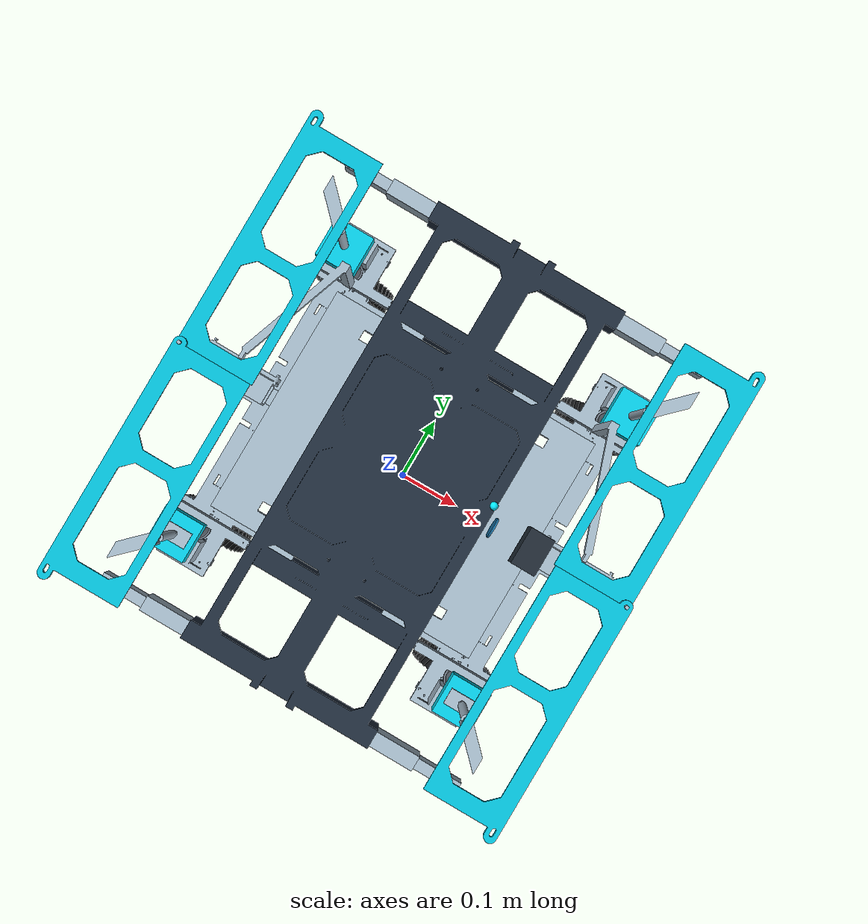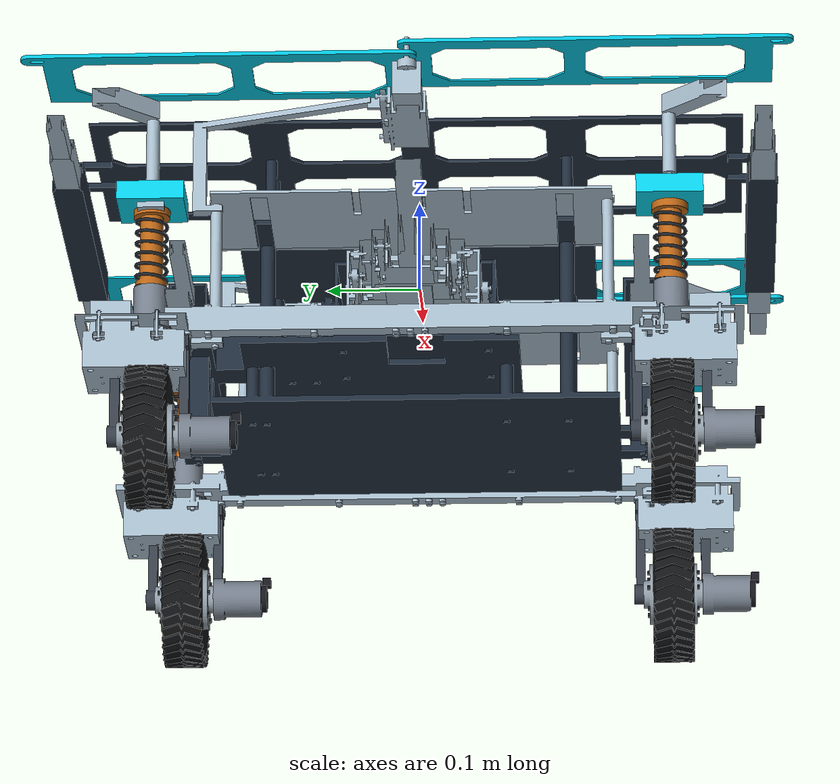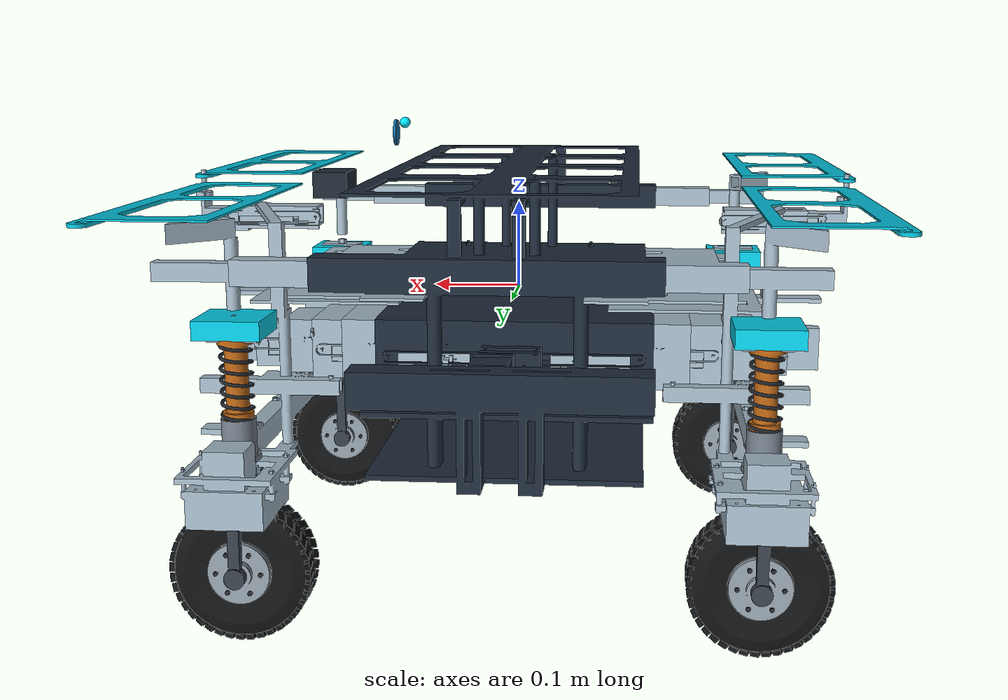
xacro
<?xml version="1.0"?>
<robot xmlns:xacro="http://www.ros.org/wiki/xacro" name="morph">
 <xacro:arg name="controllers_file" default="controllers.yaml"/>
 <xacro:arg name="chassis" default="trimmed"/>
 <xacro:property name="chassis" value="$(arg chassis)"/>
 <xacro:property name="trimmed" value="${chassis == 'trimmed'}"/>
 <xacro:property name="deck_half" value="${0.165 if trimmed else 0.210}"/>
 <xacro:property name="beam_end" value="${0.3166 if trimmed else 0.386}"/>
 <xacro:arg name="stage_effort" default="25"/>
 <xacro:property name="stage_effort" value="$(arg stage_effort)"/>
 <xacro:arg name="wheel_radius" default="0.075"/><xacro:arg name="wheel_width" default="0.045"/>
 <xacro:property name="wheel_radius" value="$(arg wheel_radius)"/><xacro:property name="wheel_width" value="$(arg wheel_width)"/>
 <xacro:include filename="common.xacro"/><xacro:include filename="leg.xacro"/>
 <link name="base_link"><xacro:box_inertia mass="6.33" x="0.28" y="0.70" z="0.15" xyz="0 0 0.02"/><xacro:mesh_visual mesh="${'fixed_trim' if trimmed else 'fixed'}" color="0.12 0.17 0.23 1"/><xacro:box_collision name="underbody_collision" xyz="0 0 0.02" size="0.28 0.70 0.06"/>
  <!-- Envelope collisions of the visible frame (heights above ground: belly 150-325 mm, deck 350-478 mm). -->
  <xacro:box_collision name="deck_collision" xyz="0 0 0.079" size="${2*deck_half} 0.77 0.128"/><xacro:box_collision name="belly_collision" xyz="0 0 -0.0975" size="0.32 0.52 0.175"/></link>
 <link name="camera_link"><xacro:box_inertia mass="0.02" x="0.03" y="0.04" z="0.025"/><visual name="sensor_glass"><origin xyz="0.015 0 0" rpy="0 ${pi/2} 0"/><geometry><cylinder radius="0.015" length="0.003"/></geometry><material name="glass_blue"><color rgba="0.08 0.42 0.62 1"/></material></visual><visual name="status_led"><origin xyz="0 0.027 0.013"/><geometry><sphere radius="0.006"/></geometry><material name="cyan_led"><color rgba="0.01 0.9 1 1"/></material></visual></link>
 <joint name="camera_mount_joint" type="fixed"><parent link="base_link"/><child link="camera_link"/><origin xyz="0.13 0 0.18"/></joint>
 <xacro:macro name="stage" params="side index parent">
  <link name="tel${side}${index}"><xacro:box_inertia mass="0.03" x="0.15" y="0.045" z="0.05" xyz="${(1 if side=='R' else -1)*index*0.042} 0 -0.06"/><xacro:mesh_visual mesh="tel${side}${index}${'_trim' if trimmed and index in (2, 3, 4, 5) else ''}" color="0.64 0.72 0.78 1"/>
   <xacro:if value="${index == 4}"><!-- Stage 4 carries the wheel modules: low cross beam (137-225 mm) and upper carrier (225-470 mm). -->
    <xacro:box_collision name="tel${side}4_beam_collision" xyz="${(1 if side=='R' else -1)*(0.217+beam_end)/2} 0 -0.154" size="${beam_end-0.217} 0.69 0.088"/>
    <xacro:box_collision name="tel${side}4_carrier_collision" xyz="${(1 if side=='R' else -1)*(0.168+beam_end)/2} 0 0.0125" size="${beam_end-0.168} 0.57 0.245"/>
   </xacro:if></link>
  <joint name="tel${side}${index}_joint" type="prismatic"><parent link="${parent}"/><child link="tel${side}${index}"/><axis xyz="${1 if side=='R' else -1} 0 0"/><limit lower="-0.0379" upper="0.016511111111" effort="${stage_effort}" velocity="0.006"/><dynamics damping="5" friction="0.05"/></joint>
 </xacro:macro>
 <xacro:macro name="telescope" params="side">
  <xacro:stage side="${side}" index="1" parent="base_link"/><xacro:stage side="${side}" index="2" parent="tel${side}1"/><xacro:stage side="${side}" index="3" parent="tel${side}2"/><xacro:stage side="${side}" index="4" parent="tel${side}3"/><xacro:stage side="${side}" index="5" parent="tel${side}4"/><xacro:stage side="${side}" index="6" parent="tel${side}5"/>
 </xacro:macro>
 <xacro:telescope side="R"/><xacro:telescope side="L"/>
 <xacro:macro name="perimeter" params="side fb sx sy">
  <!-- Visual reduced-order closure: geometry follows head and corner angle; no redundant rigid loop. -->
  <link name="hexarm${fb}${side}"><xacro:box_inertia mass="0.02" x="0.02" y="0.379" z="0.006" xyz="0 ${sy*0.19} 0"/><xacro:mesh_visual mesh="hexarm${fb}${side}" color="0.01 0.75 0.85 1"/></link>
  <joint name="hexarm${fb}${side}_joint" type="revolute"><parent link="tel${side}6"/><child link="hexarm${fb}${side}"/><origin xyz="${sx*0.379} 0 ${0.114 if sy>0 else 0.126}"/><axis xyz="0 0 1"/><limit lower="-0.25" upper="0.25" effort="1" velocity="0.3"/><dynamics damping="0.1"/></joint>
 </xacro:macro>
 <xacro:perimeter side="R" fb="F" sx="1" sy="1"/><xacro:perimeter side="R" fb="B" sx="1" sy="-1"/><xacro:perimeter side="L" fb="F" sx="-1" sy="1"/><xacro:perimeter side="L" fb="B" sx="-1" sy="-1"/>
 <xacro:leg name="fl" side="R" ysign="1"/><xacro:leg name="fr" side="R" ysign="-1"/><xacro:leg name="rl" side="L" ysign="1"/><xacro:leg name="rr" side="L" ysign="-1"/>
 <link name="perception_link"><xacro:box_inertia mass="0.05" x="0.04" y="0.06" z="0.03"/><xacro:box_visual name="range_sensor_housing" xyz="0 0 0" size="0.04 0.06 0.03" rgba="0.12 0.16 0.20 1"/></link>
 <joint name="perception_mount" type="fixed"><parent link="base_link"/><child link="perception_link"/><origin xyz="0.22 0 0.12"/></joint>
 <ros2_control name="MorphSystem" type="system"><hardware><plugin>gz_ros2_control/GazeboSimSystem</plugin></hardware>
  <xacro:macro name="stage_controls" params="side"><xacro:controlled_joint name="tel${side}1_joint" interface="position"/><xacro:controlled_joint name="tel${side}2_joint" interface="position"/><xacro:controlled_joint name="tel${side}3_joint" interface="position"/><xacro:controlled_joint name="tel${side}4_joint" interface="position"/><xacro:controlled_joint name="tel${side}5_joint" interface="position"/><xacro:controlled_joint name="tel${side}6_joint" interface="position"/></xacro:macro>
  <xacro:stage_controls side="R"/><xacro:stage_controls side="L"/>
  <xacro:controlled_joint name="hexarmFR_joint" interface="position"/><xacro:controlled_joint name="hexarmBR_joint" interface="position"/><xacro:controlled_joint name="hexarmFL_joint" interface="position"/><xacro:controlled_joint name="hexarmBL_joint" interface="position"/>
  <xacro:leg_control name="fl"/><xacro:leg_control name="fr"/><xacro:leg_control name="rl"/><xacro:leg_control name="rr"/>
 </ros2_control>
 <gazebo><plugin filename="libgz_ros2_control-system.so" name="gz_ros2_control::GazeboSimROS2ControlPlugin"><parameters>$(arg controllers_file)</parameters><hold_joints>false</hold_joints><position_proportional_gain>0.12</position_proportional_gain></plugin>
 <plugin filename="libmorph_suspension.so" name="morph_sim::SuspensionSystem"><stiffness>2200</stiffness><damping>85</damping><thermal_capacity>180</thermal_capacity><thermal_resistance>6</thermal_resistance><temperature_coefficient>0.012</temperature_coefficient><ambient>22</ambient><joint>fl_spring_joint</joint><joint>fr_spring_joint</joint><joint>rl_spring_joint</joint><joint>rr_spring_joint</joint></plugin></gazebo>
</robot>

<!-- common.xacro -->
<robot xmlns:xacro="http://www.ros.org/wiki/xacro">
 <xacro:macro name="box_inertia" params="mass x y z xyz:='0 0 0'">
  <inertial><origin xyz="${xyz}"/><mass value="${mass}"/><inertia ixx="${mass*(y*y+z*z)/12}" ixy="0" ixz="0" iyy="${mass*(x*x+z*z)/12}" iyz="0" izz="${mass*(x*x+y*y)/12}"/></inertial>
 </xacro:macro>
 <xacro:macro name="box_visual" params="name xyz size rgba">
  <visual name="${name}"><origin xyz="${xyz}"/><geometry><box size="${size}"/></geometry><material name="${name}_material"><color rgba="${rgba}"/></material></visual>
 </xacro:macro>
 <xacro:macro name="box_collision" params="name xyz size">
  <collision name="${name}"><origin xyz="${xyz}"/><geometry><box size="${size}"/></geometry></collision>
 </xacro:macro>
 <xacro:macro name="mesh_visual" params="mesh color">
  <visual name="${mesh}_cad"><geometry><mesh filename="package://morph_sim/meshes/${mesh}.stl"/></geometry><material name="${mesh}_material"><color rgba="${color}"/></material></visual>
 </xacro:macro>
 <xacro:macro name="controlled_joint" params="name interface">
  <joint name="${name}"><command_interface name="${interface}"/><state_interface name="position"><param name="initial_value">0.0</param></state_interface><state_interface name="velocity"/><state_interface name="effort"/></joint>
 </xacro:macro>
</robot>

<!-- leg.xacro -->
<robot xmlns:xacro="http://www.ros.org/wiki/xacro">
 <xacro:macro name="module_visual" params="name mesh color"><visual name="${name}"><geometry><mesh filename="package://morph_sim/meshes/${mesh}.stl"/></geometry><material name="${name}_finish"><color rgba="${color}"/></material></visual></xacro:macro>
 <xacro:macro name="leg" params="name side ysign">
  <!-- Telescope group 4 translates this attachment by 4*d. -->
  <link name="${name}_mount"><xacro:box_inertia mass="0.03" x="0.07" y="0.07" z="0.02"/><xacro:box_visual name="${name}_mount_visual" xyz="0 0 0" size="0.07 0.07 0.02" rgba="0.02 0.8 0.9 1"/></link>
  <joint name="${name}_mount_joint" type="fixed"><parent link="tel${side}4"/><child link="${name}_mount"/><origin xyz="${0.27 if side=='R' else -0.27} ${ysign*0.27} 0"/></joint>
  <link name="${name}_height"><xacro:box_inertia mass="0.03" x="0.04" y="0.04" z="0.03"/><xacro:module_visual name="${name}_damper" mesh="research_damper" color="0.72 0.39 0.08 1"/><xacro:module_visual name="${name}_coil" mesh="research_coil" color="0.12 0.14 0.16 1"/></link>
  <joint name="${name}_height_joint" type="prismatic"><parent link="${name}_mount"/><child link="${name}_height"/><axis xyz="0 0 -1"/><limit lower="-0.015" upper="0.015" effort="100" velocity="0.025"/><dynamics damping="10" friction="0.1"/></joint>
  <!-- Passive compliance under the height actuator: +q is compression. -->
  <link name="${name}_suspension"><xacro:box_inertia mass="0.13" x="0.035" y="0.035" z="0.08" xyz="0 0 -0.04"/><xacro:module_visual name="${name}_piston" mesh="research_piston" color="0.75 0.79 0.82 1"/></link>
  <joint name="${name}_spring_joint" type="prismatic"><parent link="${name}_height"/><child link="${name}_suspension"/><axis xyz="0 0 1"/><limit lower="-0.01" upper="0.03" effort="150" velocity="0.4"/><dynamics damping="0" friction="0"/></joint>
  <link name="${name}_steering"><inertial><origin xyz="-3.198961960624117e-20 -0.024642447205810557 -0.20903575399155913"/><mass value="0.4"/><inertia ixx="0.001963799102" ixy="1.598813754e-21" ixz="5.048717442e-20" iyy="0.001447223146" iyz="-0.0004932708716" izz="0.0005822492609"/></inertial><xacro:module_visual name="${name}_fork" mesh="research_fork" color="0.21 0.24 0.28 1"/><xacro:module_visual name="${name}_motor" mesh="research_motor" color="0.45 0.49 0.54 1"/><xacro:module_visual name="${name}_encoder" mesh="research_encoder" color="0.08 0.09 0.11 1"/><xacro:box_collision name="${name}_steer_collision" xyz="0 0 -0.12" size="0.04 0.04 0.18"/><xacro:box_collision name="${name}_drive_unit_collision" xyz="0 -0.0205 -0.19" size="0.046 0.127 0.185"/></link>
  <joint name="${name}_steer_joint" type="revolute"><parent link="${name}_suspension"/><child link="${name}_steering"/><axis xyz="0 0 1"/><limit lower="${-pi/2}" upper="${pi/2}" effort="0.7" velocity="1.0"/><dynamics damping="0.15" friction="0.03"/></joint>
  <link name="${name}_wheel">
   <inertial><mass value="0.2"/><inertia ixx="${(0.14*(3*(wheel_radius**2+(.034*wheel_radius/.075)**2)+wheel_width**2)+0.06*(3*(.033*wheel_radius/.075)**2+(.04*wheel_width/.045)**2))/12}" ixy="0" ixz="0" iyy="${(0.14*(wheel_radius**2+(.034*wheel_radius/.075)**2)+0.06*(.033*wheel_radius/.075)**2)/2}" iyz="0" izz="${(0.14*(3*(wheel_radius**2+(.034*wheel_radius/.075)**2)+wheel_width**2)+0.06*(3*(.033*wheel_radius/.075)**2+(.04*wheel_width/.045)**2))/12}"/></inertial>
   <visual name="${name}_tire_visual"><geometry><mesh filename="package://morph_sim/meshes/research_tire.stl" scale="${wheel_radius/.075} ${wheel_width/.045} ${wheel_radius/.075}"/></geometry><material name="tire"><color rgba="0.065 0.07 0.075 1"/></material></visual>
   <visual name="${name}_hub_visual"><geometry><mesh filename="package://morph_sim/meshes/research_hub.stl" scale="${wheel_radius/.075} ${wheel_width/.045} ${wheel_radius/.075}"/></geometry><material name="hub"><color rgba="0.56 0.61 0.65 1"/></material></visual>
   <visual name="${name}_bolts_visual"><geometry><mesh filename="package://morph_sim/meshes/research_bolts.stl" scale="${wheel_radius/.075} ${wheel_width/.045} ${wheel_radius/.075}"/></geometry><material name="bolts"><color rgba="0.15 0.16 0.18 1"/></material></visual>
   <collision name="${name}_wheel_collision"><origin rpy="${pi/2} 0 0"/><geometry><cylinder radius="${wheel_radius}" length="${wheel_width}"/></geometry></collision>
  </link>
  <joint name="${name}_wheel_joint" type="continuous"><parent link="${name}_steering"/><child link="${name}_wheel"/><origin xyz="0 0 -0.26"/><axis xyz="0 1 0"/><limit effort="0.5" velocity="25"/><dynamics damping="0.003" friction="0.001"/></joint>
 </xacro:macro>
 <xacro:macro name="leg_control" params="name">
  <xacro:controlled_joint name="${name}_height_joint" interface="position"/><xacro:controlled_joint name="${name}_steer_joint" interface="position"/><xacro:controlled_joint name="${name}_wheel_joint" interface="velocity"/>
  <joint name="${name}_spring_joint"><state_interface name="position"/><state_interface name="velocity"/><state_interface name="effort"/></joint>
 </xacro:macro>
</robot>
